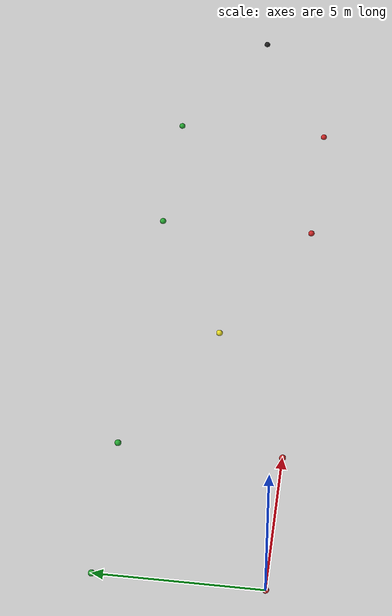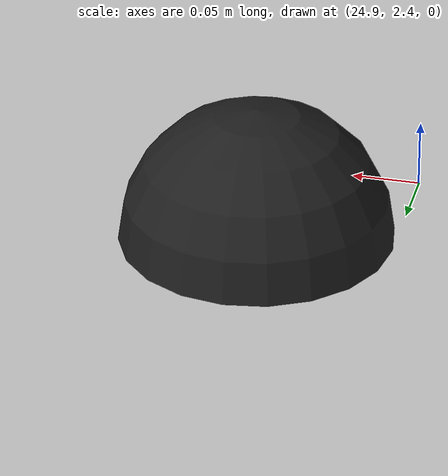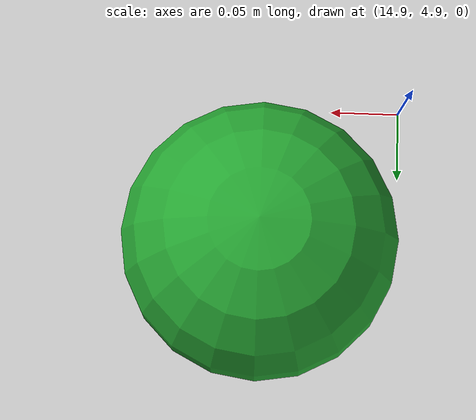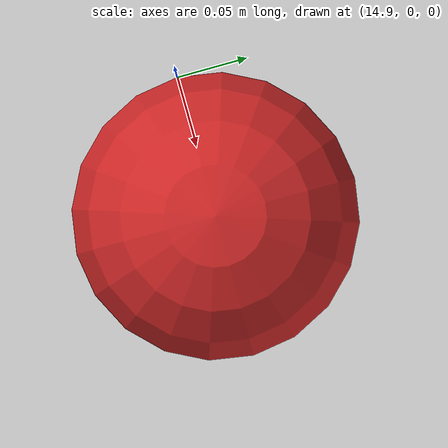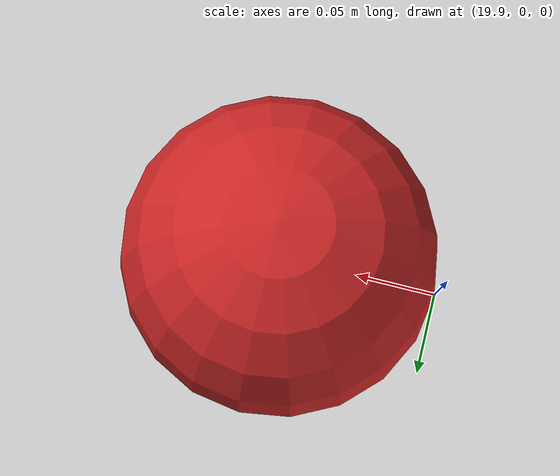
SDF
<sdf version="1.6">
 <world name="default">
  <light name="sun" type="directional">
   <pose>0 0 10 0 -0 0</pose>
   <diffuse>0.8 0.8 0.8 1</diffuse>
   <specular>0.2 0.2 0.2 1</specular>
   <attenuation>
    <range>1000</range>
    <constant>0.9</constant>
    <linear>0.01</linear>
    <quadratic>0.001</quadratic>
   </attenuation>
   <direction>-0.5 0.1 -0.9</direction>
  </light>
  <model name="ground_plane">
   <static>1</static>
   <link name="link">
    <collision name="collision">
     <geometry><plane><normal>0 0 1</normal><size>100 100</size></plane></geometry>
     <surface>
      <contact><collide_bitmask>65535</collide_bitmask></contact>
      <friction><ode><mu>100</mu><mu2>50</mu2></ode></friction>
     </surface>
    </collision>
    <visual name="visual">
     <cast_shadows>0</cast_shadows>
     <geometry><plane><normal>0 0 1</normal><size>100 100</size></plane></geometry>
     <material>
      <script><uri>file://media/materials/scripts/gazebo.material</uri><name>Gazebo/Grey</name></script>
     </material>
    </visual>
   </link>
  </model>
  <gravity>0 0 -9.8</gravity>
  <magnetic_field>6e-06 2.3e-05 -4.2e-05</magnetic_field>
  <atmosphere type="adiabatic"/>
  <physics name="default_physics" default="0" type="ode">
   <max_step_size>0.001</max_step_size>
   <real_time_factor>1</real_time_factor>
   <real_time_update_rate>1000</real_time_update_rate>
  </physics>
  <scene><ambient>0.4 0.4 0.4 1</ambient><background>0.7 0.7 0.7 1</background><shadows>1</shadows></scene>
  <audio><device>default</device></audio>
  <spherical_coordinates>
   <surface_model>EARTH_WGS84</surface_model>
   <latitude_deg>0</latitude_deg>
   <longitude_deg>0</longitude_deg>
   <elevation>0</elevation>
   <heading_deg>0</heading_deg>
  </spherical_coordinates>
  <model name="unit_sphere_1">
   <link name="link">
    <inertial>
     <mass>1</mass>
     <inertia><ixx>0.1</ixx><ixy>0</ixy><ixz>0</ixz><iyy>0.1</iyy><iyz>0</iyz><izz>0.1</izz></inertia>
    </inertial>
    <collision name="collision"><geometry><sphere><radius>0.1</radius></sphere></geometry></collision>
    <visual name="visual">
     <geometry><sphere><radius>0.1</radius></sphere></geometry>
     <material>
      <script><name>Gazebo/Red</name><uri>file://media/materials/scripts/gazebo.material</uri></script>
     </material>
    </visual>
   </link>
  </model>
  <model name="unit_sphere_2">
   <pose>5 0 0 0 -0 0</pose>
   <link name="link">
    <inertial>
     <mass>1</mass>
     <inertia><ixx>0.1</ixx><ixy>0</ixy><ixz>0</ixz><iyy>0.1</iyy><iyz>0</iyz><izz>0.1</izz></inertia>
    </inertial>
    <collision name="collision"><geometry><sphere><radius>0.1</radius></sphere></geometry></collision>
    <visual name="visual">
     <geometry><sphere><radius>0.1</radius></sphere></geometry>
     <material>
      <script><name>Gazebo/Red</name><uri>file://media/materials/scripts/gazebo.material</uri></script>
     </material>
    </visual>
   </link>
  </model>
  <model name="unit_sphere_3">
   <pose>10 2.5 0 0 -0 0</pose>
   <link name="link">
    <inertial>
     <mass>1</mass>
     <inertia><ixx>0.1</ixx><ixy>0</ixy><ixz>0</ixz><iyy>0.1</iyy><iyz>0</iyz><izz>0.1</izz></inertia>
    </inertial>
    <collision name="collision"><geometry><sphere><radius>0.1</radius></sphere></geometry></collision>
    <visual name="visual">
     <geometry><sphere><radius>0.1</radius></sphere></geometry>
     <material>
      <script><name>Gazebo/Yellow</name><uri>file://media/materials/scripts/gazebo.material</uri></script>
     </material>
    </visual>
   </link>
  </model>
  <model name="unit_sphere_4">
   <pose>15 0 0 0 -0 0</pose>
   <link name="link">
    <inertial>
     <mass>1</mass>
     <inertia><ixx>0.1</ixx><ixy>0</ixy><ixz>0</ixz><iyy>0.1</iyy><iyz>0</iyz><izz>0.1</izz></inertia>
    </inertial>
    <collision name="collision"><geometry><sphere><radius>0.1</radius></sphere></geometry></collision>
    <visual name="visual">
     <geometry><sphere><radius>0.1</radius></sphere></geometry>
     <material>
      <script><name>Gazebo/Red</name><uri>file://media/materials/scripts/gazebo.material</uri></script>
     </material>
    </visual>
   </link>
  </model>
  <model name="unit_sphere_5">
   <pose>20 0 0 0 -0 0</pose>
   <link name="link">
    <inertial>
     <mass>1</mass>
     <inertia><ixx>0.1</ixx><ixy>0</ixy><ixz>0</ixz><iyy>0.1</iyy><iyz>0</iyz><izz>0.1</izz></inertia>
    </inertial>
    <collision name="collision"><geometry><sphere><radius>0.1</radius></sphere></geometry></collision>
    <visual name="visual">
     <geometry><sphere><radius>0.1</radius></sphere></geometry>
     <material>
      <script><name>Gazebo/Red</name><uri>file://media/materials/scripts/gazebo.material</uri></script>
     </material>
    </visual>
   </link>
  </model>
  <model name="unit_sphere_6">
   <pose>0 5 0 0 -0 0</pose>
   <link name="link">
    <inertial>
     <mass>1</mass>
     <inertia><ixx>0.1</ixx><ixy>0</ixy><ixz>0</ixz><iyy>0.1</iyy><iyz>0</iyz><izz>0.1</izz></inertia>
    </inertial>
    <collision name="collision"><geometry><sphere><radius>0.1</radius></sphere></geometry></collision>
    <visual name="visual">
     <geometry><sphere><radius>0.1</radius></sphere></geometry>
     <material>
      <script><name>Gazebo/Green</name><uri>file://media/materials/scripts/gazebo.material</uri></script>
     </material>
    </visual>
   </link>
  </model>
  <model name="unit_sphere_7">
   <pose>5 5 0 0 -0 0</pose>
   <link name="link">
    <inertial>
     <mass>1</mass>
     <inertia><ixx>0.1</ixx><ixy>0</ixy><ixz>0</ixz><iyy>0.1</iyy><iyz>0</iyz><izz>0.1</izz></inertia>
    </inertial>
    <collision name="collision"><geometry><sphere><radius>0.1</radius></sphere></geometry></collision>
    <visual name="visual">
     <geometry><sphere><radius>0.1</radius></sphere></geometry>
     <material>
      <script><name>Gazebo/Green</name><uri>file://media/materials/scripts/gazebo.material</uri></script>
     </material>
    </visual>
   </link>
  </model>
  <model name="unit_sphere_9">
   <pose>15 5 0 0 -0 0</pose>
   <link name="link">
    <inertial>
     <mass>1</mass>
     <inertia><ixx>0.1</ixx><ixy>0</ixy><ixz>0</ixz><iyy>0.1</iyy><iyz>0</iyz><izz>0.1</izz></inertia>
    </inertial>
    <collision name="collision"><geometry><sphere><radius>0.1</radius></sphere></geometry></collision>
    <visual name="visual">
     <geometry><sphere><radius>0.1</radius></sphere></geometry>
     <material>
      <script><name>Gazebo/Green</name><uri>file://media/materials/scripts/gazebo.material</uri></script>
     </material>
    </visual>
   </link>
  </model>
  <model name="unit_sphere_10">
   <pose>20 5 0 0 -0 0</pose>
   <link name="link">
    <inertial>
     <mass>1</mass>
     <inertia><ixx>0.1</ixx><ixy>0</ixy><ixz>0</ixz><iyy>0.1</iyy><iyz>0</iyz><izz>0.1</izz></inertia>
    </inertial>
    <collision name="collision"><geometry><sphere><radius>0.1</radius></sphere></geometry></collision>
    <visual name="visual">
     <geometry><sphere><radius>0.1</radius></sphere></geometry>
     <material>
      <script><name>Gazebo/Green</name><uri>file://media/materials/scripts/gazebo.material</uri></script>
     </material>
    </visual>
   </link>
  </model>
  <model name="unit_sphere_11">
   <pose>25 2.5 0 0 -0 0</pose>
   <link name="link">
    <inertial>
     <mass>1</mass>
     <inertia><ixx>0.1</ixx><ixy>0</ixy><ixz>0</ixz><iyy>0.1</iyy><iyz>0</iyz><izz>0.1</izz></inertia>
    </inertial>
    <collision name="collision"><geometry><sphere><radius>0.1</radius></sphere></geometry></collision>
    <visual name="visual">
     <geometry><sphere><radius>0.1</radius></sphere></geometry>
     <material>
      <script><name>Gazebo/Black</name><uri>file://media/materials/scripts/gazebo.material</uri></script>
     </material>
    </visual>
   </link>
  </model>
 </world>
</sdf>
